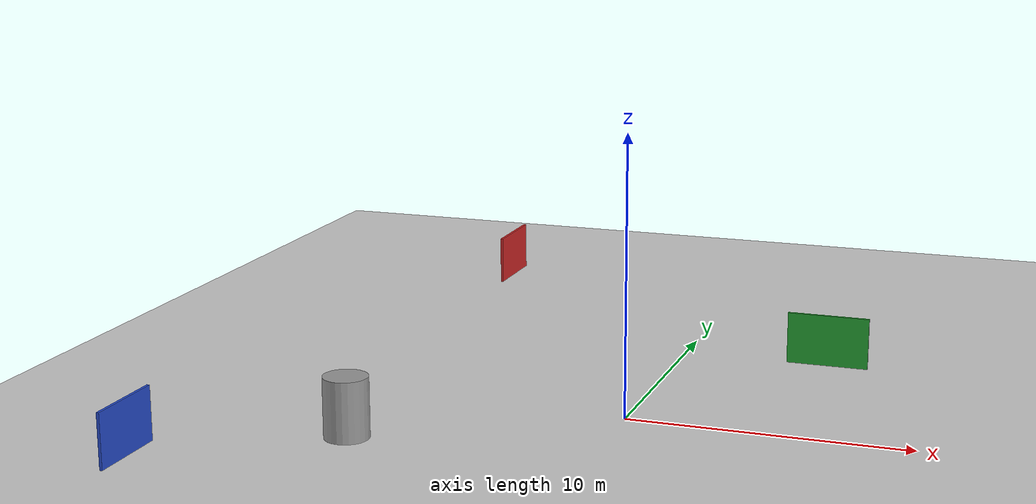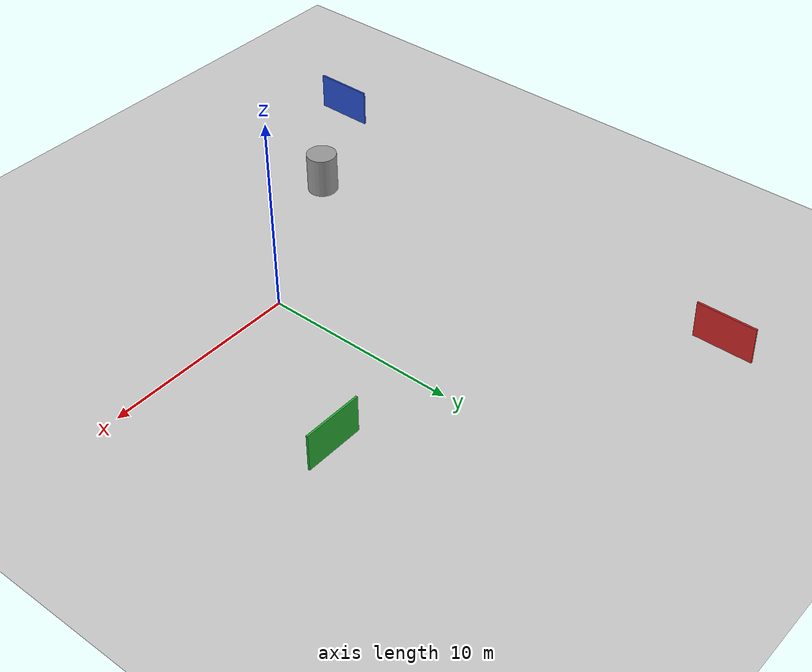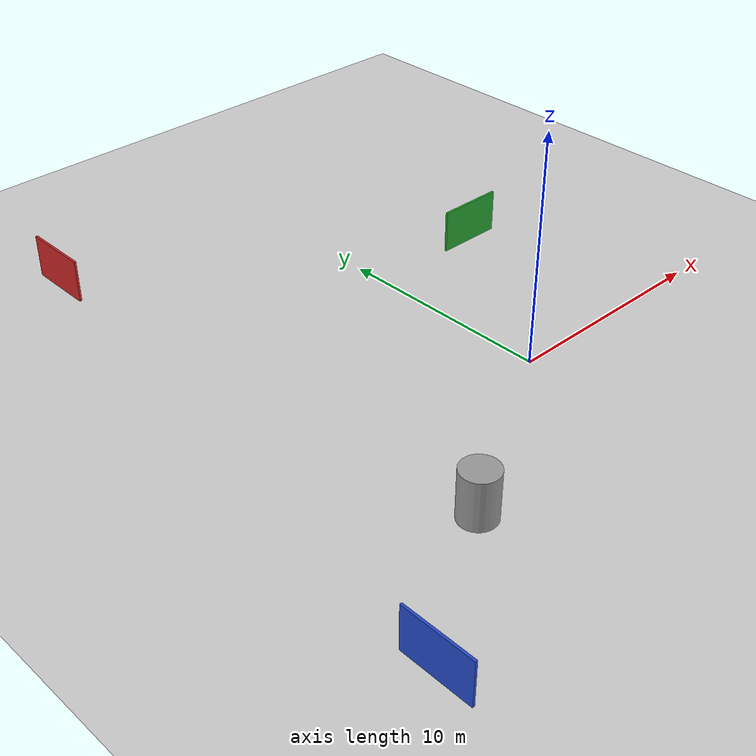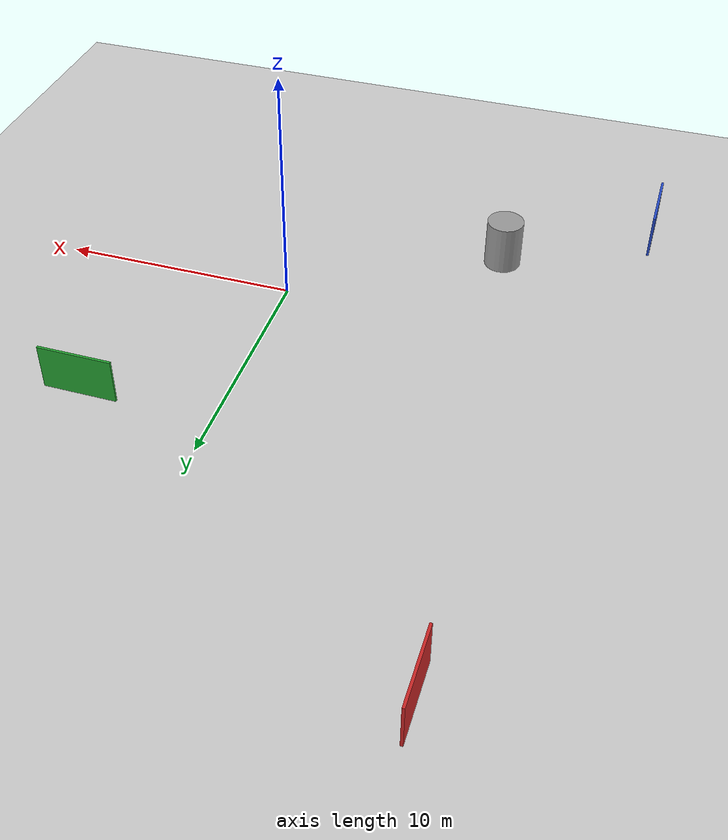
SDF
<sdf version="1.7">
 <world name="default">
  <light name="sun" type="directional">
   <pose>0 0 10 0 -0 0</pose>
   <diffuse>0.8 0.8 0.8 1</diffuse>
   <specular>0.2 0.2 0.2 1</specular>
   <attenuation>
    <range>1000</range>
    <constant>0.9</constant>
    <linear>0.01</linear>
    <quadratic>0.001</quadratic>
   </attenuation>
   <direction>-0.5 0.1 -0.9</direction>
   <spot><inner_angle>0</inner_angle><outer_angle>0</outer_angle><falloff>0</falloff></spot>
  </light>
  <gravity>0 0 -9.8</gravity>
  <magnetic_field>6e-06 2.3e-05 -4.2e-05</magnetic_field>
  <atmosphere type="adiabatic"/>
  <physics type="ode">
   <max_step_size>0.001</max_step_size>
   <real_time_factor>1</real_time_factor>
   <real_time_update_rate>1000</real_time_update_rate>
  </physics>
  <scene><ambient>0.4 0.4 0.4 1</ambient><background>0.7 0.7 0.7 1</background><shadows>1</shadows></scene>
  <spherical_coordinates>
   <surface_model>EARTH_WGS84</surface_model>
   <latitude_deg>0</latitude_deg>
   <longitude_deg>0</longitude_deg>
   <elevation>0</elevation>
   <heading_deg>0</heading_deg>
  </spherical_coordinates>
  <model name="my_ground_plane">
   <static>1</static>
   <link name="link">
    <collision name="collision">
     <geometry><plane><normal>0 0 1</normal><size>100 100</size></plane></geometry>
     <surface><friction><ode><mu>100</mu><mu2>50</mu2></ode></friction></surface>
    </collision>
    <visual name="visual">
     <cast_shadows>0</cast_shadows>
     <geometry><plane><normal>0 0 1</normal><size>100 100</size></plane></geometry>
     <material>
      <script>
       <uri>model://my_ground_plane/materials/scripts/</uri>
       <uri>model://my_ground_plane/materials/texture</uri>
       <name>my_ground_plane/Image</name>
      </script>
     </material>
    </visual>
   </link>
   <pose>-0.018054 0.010358 0 0 -0 0</pose>
  </model>
  <model name="unit_box_clone">
   <pose>-14.3504 -8.75981 0.973384 -3.3e-05 -1e-06 -0.004958</pose>
   <link name="link">
    <inertial>
     <mass>1</mass>
     <inertia>
      <ixx>0.166667</ixx>
      <ixy>0</ixy>
      <ixz>0</ixz>
      <iyy>0.166667</iyy>
      <iyz>0</iyz>
      <izz>0.166667</izz>
     </inertia>
    </inertial>
    <collision name="collision"><geometry><box><size>0.099639 3.06195 1.94687</size></box></geometry></collision>
    <visual name="visual">
     <geometry><box><size>0.099639 3.06195 1.94687</size></box></geometry>
     <material>
      <script><name>Gazebo/Blue</name><uri>file://media/materials/scripts/gazebo.material</uri></script>
     </material>
    </visual>
   </link>
  </model>
  <model name="unit_box_clone_0">
   <pose>-10.4969 17.7769 0.973384 3.3e-05 -1e-06 -0.002349</pose>
   <link name="link">
    <inertial>
     <mass>1</mass>
     <inertia>
      <ixx>0.166667</ixx>
      <ixy>0</ixy>
      <ixz>0</ixz>
      <iyy>0.166667</iyy>
      <iyz>0</iyz>
      <izz>0.166667</izz>
     </inertia>
    </inertial>
    <collision name="collision"><geometry><box><size>0.099639 3.06195 1.94687</size></box></geometry></collision>
    <visual name="visual">
     <geometry><box><size>0.099639 3.06195 1.94687</size></box></geometry>
     <material>
      <script><name>Gazebo/Red</name><uri>file://media/materials/scripts/gazebo.material</uri></script>
     </material>
    </visual>
   </link>
  </model>
  <model name="unit_box_clone_clone">
   <pose>5.4531 8.44413 0.973384 -3.3e-05 1e-06 1.56987</pose>
   <link name="link">
    <inertial>
     <mass>1</mass>
     <inertia>
      <ixx>0.166667</ixx>
      <ixy>0</ixy>
      <ixz>0</ixz>
      <iyy>0.166667</iyy>
      <iyz>0</iyz>
      <izz>0.166667</izz>
     </inertia>
    </inertial>
    <collision name="collision"><geometry><box><size>0.099639 3.06195 1.94687</size></box></geometry></collision>
    <visual name="visual">
     <geometry><box><size>0.099639 3.06195 1.94687</size></box></geometry>
     <material>
      <script><name>Gazebo/Green</name><uri>file://media/materials/scripts/gazebo.material</uri></script>
     </material>
    </visual>
   </link>
  </model>
  <model name="unit_cylinder">
   <pose>-8.29165 -4.83065 1.07561 0 -0 5.8e-05</pose>
   <link name="link">
    <inertial>
     <mass>1</mass>
     <inertia><ixx>0.145833</ixx><ixy>0</ixy><ixz>0</ixz><iyy>0.145833</iyy><iyz>0</iyz><izz>0.125</izz></inertia>
    </inertial>
    <collision name="collision">
     <geometry><cylinder><radius>0.787315</radius><length>2.15123</length></cylinder></geometry>
    </collision>
    <visual name="visual">
     <geometry><cylinder><radius>0.787315</radius><length>2.15123</length></cylinder></geometry>
     <material>
      <script><name>Gazebo/Grey</name><uri>file://media/materials/scripts/gazebo.material</uri></script>
     </material>
    </visual>
   </link>
  </model>
 </world>
</sdf>
